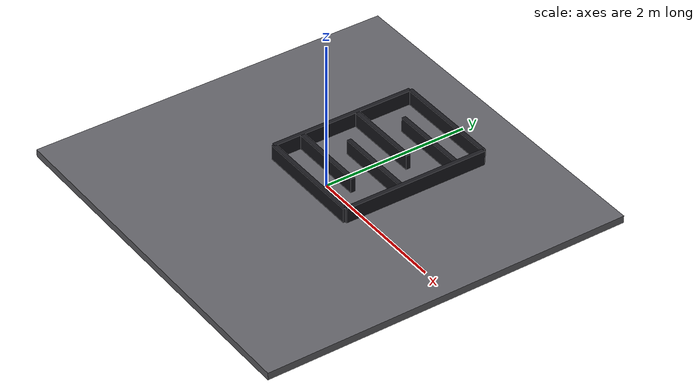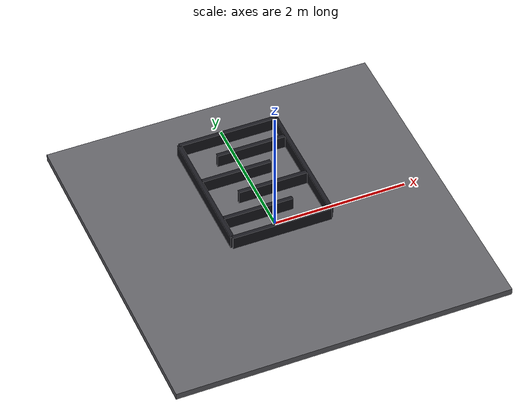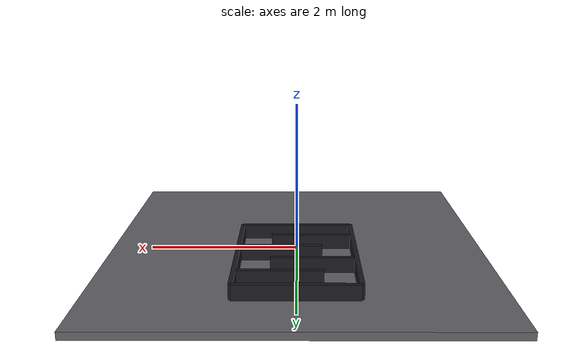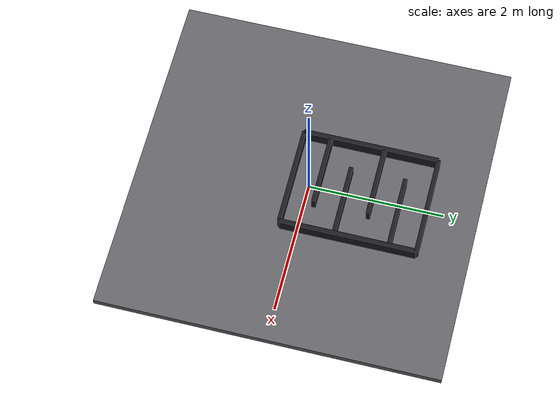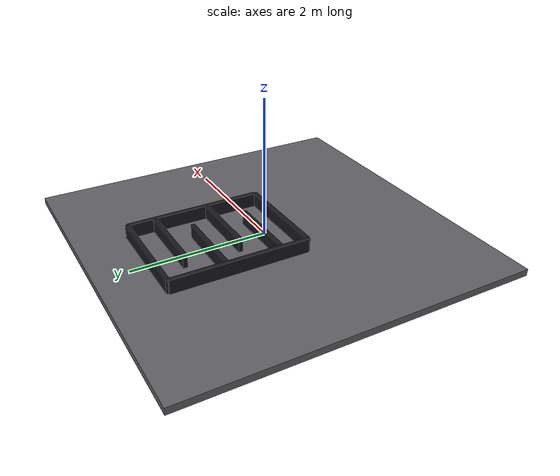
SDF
<sdf version="1.8">
 <world name="demo">
  <physics name="1ms" type="ignored">
   <max_step_size>0.001</max_step_size>
   <real_time_factor>1.0</real_time_factor>
  </physics>
  <plugin filename="libignition-gazebo-physics-system.so" name="ignition::gazebo::systems::Physics"/>
  <plugin filename="libignition-gazebo-user-commands-system.so" name="ignition::gazebo::systems::UserCommands"/>
  <plugin filename="libignition-gazebo-scene-broadcaster-system.so" name="ignition::gazebo::systems::SceneBroadcaster"/>
  <plugin filename="libignition-gazebo-sensors-system.so" name="ignition::gazebo::systems::Sensors">
   <render_engine>ogre2</render_engine>
  </plugin>
  <plugin filename="libignition-gazebo-imu-system.so" name="ignition::gazebo::systems::Imu"/>
  <scene>
   <ambient>0.35 0.35 0.35 1</ambient>
   <background>0.12 0.12 0.14 1</background>
   <shadows>true</shadows>
  </scene>
  <light type="point" name="warehouse_light_1">
   <pose>0 0 5 0 0 0</pose>
   <diffuse>0.75 0.75 0.75 1</diffuse>
   <specular>0.15 0.15 0.15 1</specular>
   <attenuation>
    <range>15</range>
    <constant>0.8</constant>
    <linear>0.02</linear>
    <quadratic>0.001</quadratic>
   </attenuation>
  </light>
  <light type="point" name="warehouse_light_2">
   <pose>2 2 4 0 0 0</pose>
   <diffuse>0.65 0.65 0.65 1</diffuse>
   <specular>0.10 0.10 0.10 1</specular>
   <attenuation>
    <range>10</range>
    <constant>0.8</constant>
    <linear>0.02</linear>
    <quadratic>0.001</quadratic>
   </attenuation>
  </light>
  <light type="point" name="warehouse_light_3">
   <pose>-2 -2 4 0 0 0</pose>
   <diffuse>0.65 0.65 0.65 1</diffuse>
   <specular>0.10 0.10 0.10 1</specular>
   <attenuation>
    <range>10</range>
    <constant>0.8</constant>
    <linear>0.02</linear>
    <quadratic>0.001</quadratic>
   </attenuation>
  </light>
  <model name="floor">
   <static>true</static>
   <link name="link">
    <collision name="collision"><geometry><box><size>5 5 0.1</size></box></geometry></collision>
    <visual name="visual">
     <geometry><box><size>5 5 0.1</size></box></geometry>
     <material>
      <ambient>0.28 0.28 0.30 1</ambient>
      <diffuse>0.38 0.38 0.40 1</diffuse>
      <specular>0.08 0.08 0.08 1</specular>
     </material>
    </visual>
   </link>
  </model>
  <model name="wall_left">
   <static>true</static>
   <pose>-0.75 0.75 0.15 0 0 1.5708</pose>
   <link name="link">
    <collision name="collision"><geometry><box><size>2.0 0.06 0.20</size></box></geometry></collision>
    <visual name="visual">
     <geometry><box><size>2.0 0.06 0.20</size></box></geometry>
     <material>
      <ambient>0.06 0.06 0.07 1</ambient>
      <diffuse>0.10 0.10 0.12 1</diffuse>
      <specular>0.18 0.18 0.18 1</specular>
     </material>
    </visual>
   </link>
  </model>
  <model name="wall_right">
   <static>true</static>
   <pose>0.75 0.75 0.15 0 0 1.5708</pose>
   <link name="link">
    <collision name="collision"><geometry><box><size>2.0 0.06 0.20</size></box></geometry></collision>
    <visual name="visual">
     <geometry><box><size>2.0 0.06 0.20</size></box></geometry>
     <material>
      <ambient>0.06 0.06 0.07 1</ambient>
      <diffuse>0.10 0.10 0.12 1</diffuse>
      <specular>0.18 0.18 0.18 1</specular>
     </material>
    </visual>
   </link>
  </model>
  <model name="wall_bottom">
   <static>true</static>
   <pose>0 -0.25 0.15 0 0 0</pose>
   <link name="link">
    <collision name="collision"><geometry><box><size>1.5 0.06 0.20</size></box></geometry></collision>
    <visual name="visual">
     <geometry><box><size>1.5 0.06 0.20</size></box></geometry>
     <material>
      <ambient>0.06 0.06 0.07 1</ambient>
      <diffuse>0.10 0.10 0.12 1</diffuse>
      <specular>0.18 0.18 0.18 1</specular>
     </material>
    </visual>
   </link>
  </model>
  <model name="wall_top">
   <static>true</static>
   <pose>0 1.75 0.15 0 0 0</pose>
   <link name="link">
    <collision name="collision"><geometry><box><size>1.5 0.06 0.20</size></box></geometry></collision>
    <visual name="visual">
     <geometry><box><size>1.5 0.06 0.20</size></box></geometry>
     <material>
      <ambient>0.06 0.06 0.07 1</ambient>
      <diffuse>0.10 0.10 0.12 1</diffuse>
      <specular>0.18 0.18 0.18 1</specular>
     </material>
    </visual>
   </link>
  </model>
  <model name="maze_wall_1">
   <static>true</static>
   <pose>-0.195 0.15 0.15 0 0 0</pose>
   <link name="link">
    <collision name="collision"><geometry><box><size>1.05 0.06 0.20</size></box></geometry></collision>
    <visual name="visual">
     <geometry><box><size>1.05 0.06 0.20</size></box></geometry>
     <material>
      <ambient>0.06 0.06 0.07 1</ambient>
      <diffuse>0.10 0.10 0.12 1</diffuse>
      <specular>0.18 0.18 0.18 1</specular>
     </material>
    </visual>
   </link>
  </model>
  <model name="maze_wall_2">
   <static>true</static>
   <pose>0.195 0.55 0.15 0 0 0</pose>
   <link name="link">
    <collision name="collision"><geometry><box><size>1.05 0.06 0.20</size></box></geometry></collision>
    <visual name="visual">
     <geometry><box><size>1.05 0.06 0.20</size></box></geometry>
     <material>
      <ambient>0.06 0.06 0.07 1</ambient>
      <diffuse>0.10 0.10 0.12 1</diffuse>
      <specular>0.18 0.18 0.18 1</specular>
     </material>
    </visual>
   </link>
  </model>
  <model name="maze_wall_3">
   <static>true</static>
   <pose>-0.195 0.95 0.15 0 0 0</pose>
   <link name="link">
    <collision name="collision"><geometry><box><size>1.05 0.06 0.20</size></box></geometry></collision>
    <visual name="visual">
     <geometry><box><size>1.05 0.06 0.20</size></box></geometry>
     <material>
      <ambient>0.06 0.06 0.07 1</ambient>
      <diffuse>0.10 0.10 0.12 1</diffuse>
      <specular>0.18 0.18 0.18 1</specular>
     </material>
    </visual>
   </link>
  </model>
  <model name="maze_wall_4">
   <static>true</static>
   <pose>0.195 1.35 0.15 0 0 0</pose>
   <link name="link">
    <collision name="collision"><geometry><box><size>1.05 0.06 0.20</size></box></geometry></collision>
    <visual name="visual">
     <geometry><box><size>1.05 0.06 0.20</size></box></geometry>
     <material>
      <ambient>0.06 0.06 0.07 1</ambient>
      <diffuse>0.10 0.10 0.12 1</diffuse>
      <specular>0.18 0.18 0.18 1</specular>
     </material>
    </visual>
   </link>
  </model>
 </world>
</sdf>
